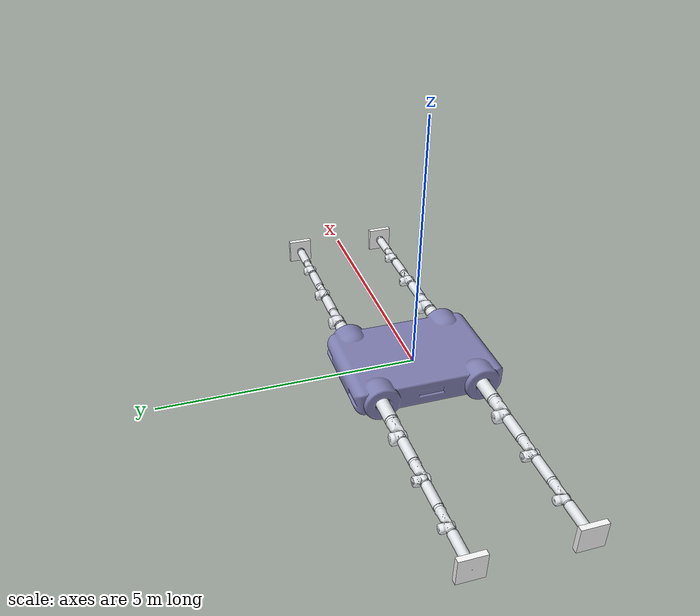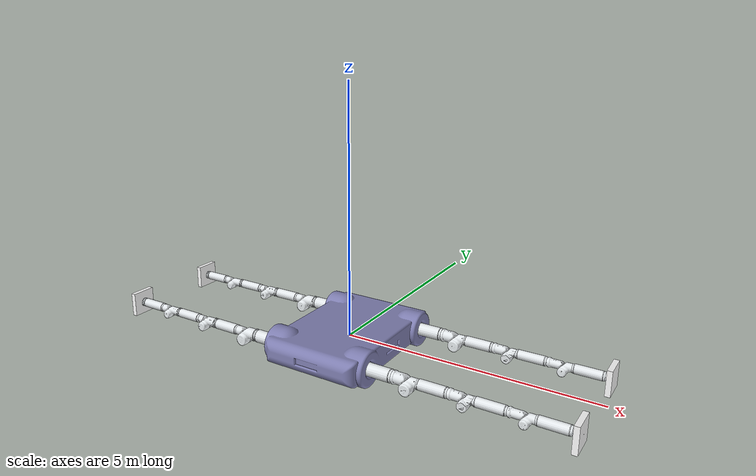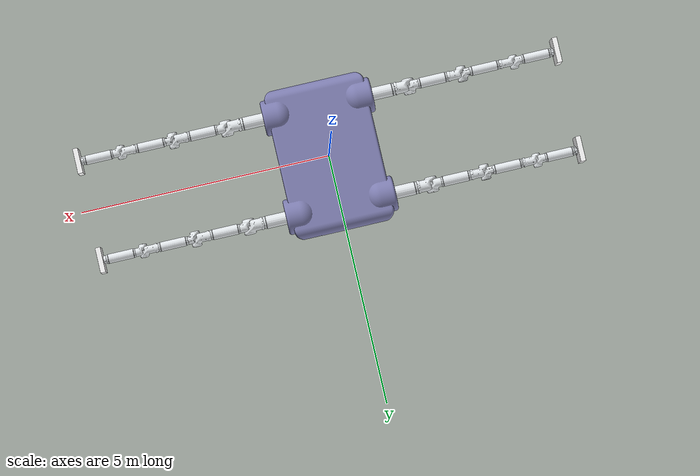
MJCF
<mujoco model="crab_robot">
  <compiler angle="radian" />

  <option iterations="1" ls_iterations="5" timestep="0.004" integrator="Euler" gravity="0 0 0">
    <flag eulerdamp="enable" />
  </option>

  <default>
    <default class="crab">
      <!-- globally disable all collisions -->
      <geom condim="1" contype="0" conaffinity="0" type="capsule" />
      <joint pos="0 0 0" axis="0 0 1" />
      <default class="roll">
        <joint range="-3.14 3.14" />
        <position kp="50" dampratio="1" ctrlrange="-3.14 3.14" />
      </default>
      <default class="pitch">
        <joint range="-3.14 0" />
        <position kp="400" dampratio="1" ctrlrange="-3.14 0" />
      </default>
      <default class="wrist">
        <joint range="-3.14 3.14" />
        <position kp="5" dampratio="1" ctrlrange="-3.14 3.14" />
      </default>
      <default class="visual">
        <geom type="mesh" contype="0" conaffinity="0" group="2" rgba="0.898039 0.917647 0.929412 1" />
        <default class="cluster_0">
          <geom type="capsule" size="0.127 0.25" rgba="0.898039 0.917647 0.929412 1" />
        </default>
        <default class="cluster_1_end">
          <geom pos="-0.134924 0.224015 0"
            quat="0.706998 -0.706998 -0.0123774 0.0123774" mesh="cluster_1_end_link" />
        </default>
        <default class="cluster_2_end">
          <geom pos="-0.1016 0.2032 0" quat="0.707105 -0.707108 0 0" type="mesh"
            rgba="0.89804 0.91765 0.92941 1" mesh="cluster_2_end_link" />
        </default>
      </default>
      <!-- enable collisions between specific bodies -->
      <default class="base">
        <!-- contype = 00001 -->
        <geom contype="1" />
      </default>
      <default class="cluster_1">
        <geom type="capsule" size="0.1016 0.25" pos="-0.143675 0.473861 0"
          quat="0.706998 -0.706998 -0.0123774 0.0123774"
          rgba="0.898039 0.917647 0.929412 1" />
        <default class="FR_cluster_1">
          <!-- contype = 00010 -->
          <geom contype="2" />
        </default>
        <default class="RR_cluster_1">
          <!-- contype = 00100 -->
          <geom contype="4" />
        </default>
        <default class="FL_cluster_1">
          <!-- contype = 01000 -->
          <geom contype="8" />
        </default>
        <default class="RL_cluster_1">
          <!-- contype = 10000 -->
          <geom contype="16" />
        </default>
      </default>
      <default class="cluster_2">
        <geom type="capsule" size="0.092075 0.25" pos="-0.1016 0.4532 -9.18301e-07"
          quat="0.707105 -0.707108 0 0" rgba="0.898039 0.917647 0.929412 1" />
        <default class="FR_cluster_2">
          <!-- conaffinity = 00100 -->
          <geom conaffinity="4" />
        </default>
        <default class="RR_cluster_2">
          <!-- conaffinity = 00010 -->
          <geom conaffinity="2" />
        </default>
        <default class="FL_cluster_2">
          <!-- conaffinity = 10000 -->
          <geom conaffinity="16" />
        </default>
        <default class="RL_cluster_2">
          <!-- conaffinity = 01000 -->
          <geom conaffinity="8" />
        </default>
      </default>
      <default class="cluster_3">
        <geom type="capsule" size="0.092075 0.25" pos="-0.0889 0.4532 -9.18301e-07"
          quat="0.707105 -0.707108 0 0" rgba="0.89804 0.91765 0.92941 1" />
        <default class="FR_cluster_3">
          <!-- conaffinity = 00101 -->
          <geom conaffinity="5" />
        </default>
        <default class="RR_cluster_3">
          <!-- conaffinity = 00011 -->
          <geom conaffinity="3" />
        </default>
        <default class="FL_cluster_3">
          <!-- conaffinity = 10001 -->
          <geom conaffinity="17" />
        </default>
        <default class="RL_cluster_3">
          <!-- conaffinity = 01001 -->
          <geom conaffinity="9" />
        </default>
        <default class="hand">
          <geom type="box" size="0.25 0.25 0.05" pos="0 0 0.15" quat="1 0 0 0" rgba="1 1 1 1" />
          <site pos="0 0 0.2" />
        </default>
      </default>
    </default>
  </default>

  <asset>
    <mesh name="base_link"
      file="/home/emily/rpc/robot_model/crab/meshes/base_link.stl" />
    <mesh name="base_link_simple"
      file="/home/emily/rpc/robot_model/crab/meshes/base_link.stl" />
    <mesh name="cluster_1_proximal_link"
      file="/home/emily/rpc/robot_model/crab/meshes/cluster_776_proximal_link.stl" />
    <mesh name="cluster_1_distal_link"
      file="/home/emily/rpc/robot_model/crab/meshes/cluster_776_distal_link.stl" />
    <mesh name="cluster_1_end_link"
      file="/home/emily/rpc/robot_model/crab/meshes/cluster_776_end_link.stl" />
    <mesh name="cluster_2_proximal_link"
      file="/home/emily/rpc/robot_model/crab/meshes/cluster_665_proximal_link.stl" />
    <mesh name="cluster_2_distal_link"
      file="/home/emily/rpc/robot_model/crab/meshes/cluster_665_distal_link.stl" />
    <mesh name="cluster_2_end_link"
      file="/home/emily/rpc/robot_model/crab/meshes/cluster_665_end_link.stl" />
    <mesh name="cluster_3_proximal_link"
      file="/home/emily/rpc/robot_model/crab/meshes/cluster_5555_proximal_link.stl" />
    <mesh name="cluster_3_distal_link"
      file="/home/emily/rpc/robot_model/crab/meshes/cluster_5555_distal_link.stl" />
    <mesh name="wrist_link"
      file="/home/emily/rpc/robot_model/crab/meshes/cluster_5555_wrist_link.stl" />
  </asset>

  <worldbody>
    <light name="spotlight" mode="targetbodycom" target="base" pos="3 0 4" />
    <body name="base" childclass="crab">
      <camera name="track" pos="9.685 7.841 5.994" xyaxes="-0.629 0.777 -0.000 -0.337 -0.273 0.901"
        mode="trackcom" />
      <camera name="top" pos="-1 0 1" xyaxes="0 -1 0 0.7 0 0.7" mode="trackcom" />
      <camera name="side" pos="0 -1 .3" xyaxes="1 0 0 0 1 2" mode="trackcom" />
      <camera name="back" pos="-1 0 .3" xyaxes="0 -1 0 1 0 2" mode="trackcom" />
      <inertial pos="1.59866e-08 0.012585 1.27306e-11" quat="0.500006 0.499965 -0.500035 0.499994"
        mass="119" diaginertia="149.258 96.1632 57.7298" />
      <geom class="visual" type="mesh" rgba="0.5 0.5 0.7 1" mesh="base_link" />
      <geom class="cluster_0" pos="1.25 1 0.000199082" quat="0.707388 0 0.706825 0" />
      <geom class="cluster_0" pos="-1.25 0.999602 -0.000199081"
        quat="0.000563312 0.707388 0.000562864 -0.706825" />
      <geom class="cluster_0" pos="1.25 -1 0.000199082" quat="0.707388 0 0.706825 0" />
      <geom class="cluster_0" pos="-1.25 -1.0004 -0.000199081"
        quat="0.000563312 0.707388 0.000562864 -0.706825" />
      <geom class="base" type="mesh" mesh="base_link_simple" group="3" />
      <freejoint />
      <site name="imu" pos="0 0 0" />
      <body name="FR_cluster_1_proximal" pos="1.5 1 0.000398163" quat="0.707388 0 0.706825 0">
        <inertial pos="0.046798 0.012731 0.19914" quat="0.671746 0.213265 0.316607 0.634851"
          mass="16.527" diaginertia="0.185581 0.152797 0.102802" />
        <joint name="FR_cluster_1_roll" class="roll" />
        <geom class="visual" mesh="cluster_1_proximal_link" />
        <body name="FR_cluster_1_distal" pos="0.127 0 0.34925"
          quat="0.706998 0.706998 0.0123774 -0.0123774">
          <inertial pos="-0.0992135 0.206673 0.0272132" quat="0.453823 0.503379 -0.445561 0.584919"
            mass="8.67091" diaginertia="0.494318 0.46179 0.061677" />
          <joint name="FR_cluster_1_pitch" class="pitch" />
          <geom class="visual" mesh="cluster_1_distal_link" />
          <geom class="cluster_1_end" />
          <geom class="FR_cluster_1" />
          <body name="FR_cluster_2_proximal" pos="-0.152425 0.723708 0"
            quat="0.706998 -0.706998 -0.0123774 0.0123774">
            <inertial pos="0.034064 0.015225 0.20259" quat="0.686346 0.127566 0.222924 0.680413"
              mass="10.138" diaginertia="0.0981416 0.0789755 0.0478309" />
            <joint name="FR_cluster_2_roll" class="roll" />
            <geom class="visual" mesh="cluster_2_proximal_link" />
            <body name="FR_cluster_2_distal" pos="0.1016 0 0.34925" quat="0.707105 0.707108 0 0">
              <inertial pos="-0.0771514 0.219461 0.0233658"
                quat="0.462552 0.47813 -0.473885 0.576949" mass="7.58403"
                diaginertia="0.392075 0.375777 0.0396222" />
              <joint name="FR_cluster_2_pitch" class="pitch" />
              <geom class="visual" mesh="cluster_2_distal_link" />
              <geom class="cluster_2_end" />
              <geom class="FR_cluster_2" />
              <body name="FR_cluster_3_proximal" pos="-0.1016 0.7032 -1.8366e-06"
                quat="0.707105 -0.707108 0 0">
                <inertial pos="0.026668 0.014315 0.20188"
                  quat="0.696543 0.0795451 0.170776 0.692341" mass="9.0522"
                  diaginertia="0.0754392 0.0616876 0.0333272" />
                <joint name="FR_cluster_3_roll" class="roll" />
                <geom class="visual" mesh="cluster_3_proximal_link" />
                <body name="FR_cluster_3_distal" pos="0.0889 0 0.34925"
                  quat="0.707105 0.707108 0 0">
                  <inertial pos="-0.0727041 0.237528 0.0166008"
                    quat="0.473139 0.481424 -0.484023 0.556859" mass="6.9917"
                    diaginertia="0.341329 0.32973 0.032835" />
                  <joint name="FR_cluster_3_pitch" class="pitch" />
                  <geom class="visual" mesh="cluster_3_distal_link" />
                  <geom class="FR_cluster_3" />
                  <body name="FR_wrist" pos="-0.0889 0.7032 -1.8366e-06"
                    quat="0.707105 -0.707108 0 0">
                    <inertial pos="9.9701e-06 -0.00027566 0.041402"
                      quat="0.0555933 0.704944 -0.0553839 0.704908" mass="2.5013"
                      diaginertia="0.010225 0.00552746 0.00547194" />
                    <joint name="FR_wrist" class="wrist" />
                    <geom class="visual" mesh="wrist_link" />
                    <geom class="hand" />
                    <site name="FR" class="hand" />
                  </body>
                </body>
              </body>
            </body>
          </body>
        </body>
      </body>
      <body name="FL_cluster_1_proximal" pos="-1.5 0.999204 -0.000398163"
        quat="0.000563312 0.707388 0.000562864 -0.706825">
        <inertial pos="0.046798 0.012731 0.19914" quat="0.671746 0.213265 0.316607 0.634851"
          mass="16.527" diaginertia="0.185581 0.152797 0.102802" />
        <joint name="FL_cluster_1_roll" class="roll" />
        <geom class="visual" mesh="cluster_1_proximal_link" />
        <body name="FL_cluster_1_distal" pos="0.127 0 0.34925"
          quat="0.706998 0.706998 0.0123774 -0.0123774">
          <inertial pos="-0.0992135 0.206673 0.0272132" quat="0.453823 0.503379 -0.445561 0.584919"
            mass="8.67091" diaginertia="0.494318 0.46179 0.061677" />
          <joint name="FL_cluster_1_pitch" class="pitch" />
          <geom class="visual" mesh="cluster_1_distal_link" />
          <geom class="cluster_1_end" />
          <geom class="FL_cluster_1" />
          <body name="FL_cluster_2_proximal" pos="-0.152425 0.723708 0"
            quat="0.706998 -0.706998 -0.0123774 0.0123774">
            <inertial pos="0.034064 0.015225 0.20259" quat="0.686346 0.127566 0.222924 0.680413"
              mass="10.138" diaginertia="0.0981416 0.0789755 0.0478309" />
            <joint name="FL_cluster_2_roll" class="roll" />
            <geom class="visual" mesh="cluster_2_proximal_link" />
            <body name="FL_cluster_2_distal" pos="0.1016 0 0.34925"
              quat="0.707105 0.707108 0 0">
              <inertial pos="-0.0771514 0.219461 0.0233658"
                quat="0.462552 0.47813 -0.473885 0.576949" mass="7.58403"
                diaginertia="0.392075 0.375777 0.0396222" />
              <joint name="FL_cluster_2_pitch" class="pitch" />
              <geom class="visual" mesh="cluster_2_distal_link" />
              <geom class="cluster_2_end" />
              <geom class="FL_cluster_2" />
              <body name="FL_cluster_3_proximal" pos="-0.1016 0.7032 -1.8366e-06"
                quat="0.707105 -0.707108 0 0">
                <inertial pos="0.026668 0.014315 0.20188"
                  quat="0.696543 0.0795451 0.170776 0.692341" mass="9.0522"
                  diaginertia="0.0754392 0.0616876 0.0333272" />
                <joint name="FL_cluster_3_roll" class="roll" />
                <geom class="visual" mesh="cluster_3_proximal_link" />
                <body name="FL_cluster_3_distal" pos="0.0889 0 0.34925"
                  quat="0.707105 0.707108 0 0">
                  <inertial pos="-0.0727041 0.237528 0.0166008"
                    quat="0.473139 0.481424 -0.484023 0.556859" mass="6.9917"
                    diaginertia="0.341329 0.32973 0.032835" />
                  <joint name="FL_cluster_3_pitch" class="pitch" />
                  <geom class="visual" mesh="cluster_3_distal_link" />
                  <geom class="FL_cluster_3" />
                  <body name="FL_wrist" pos="-0.0889 0.7032 -1.8366e-06"
                    quat="0.707105 -0.707108 0 0">
                    <inertial pos="9.9701e-06 -0.00027566 0.041402"
                      quat="0.0555933 0.704944 -0.0553839 0.704908" mass="2.5013"
                      diaginertia="0.010225 0.00552746 0.00547194" />
                    <joint name="FL_wrist" class="wrist" />
                    <geom class="visual" mesh="wrist_link" />
                    <geom class="hand" />
                    <site name="FL" class="hand" />
                  </body>
                </body>
              </body>
            </body>
          </body>
        </body>
      </body>
      <body name="RR_cluster_1_proximal" pos="1.5 -1 0.000398163"
        quat="0.707388 0 0.706825 0">
        <inertial pos="0.046798 0.012731 0.19914" quat="0.671746 0.213265 0.316607 0.634851"
          mass="16.527" diaginertia="0.185581 0.152797 0.102802" />
        <joint name="RR_cluster_1_roll" class="roll" />
        <geom class="visual" mesh="cluster_1_proximal_link" />
        <body name="RR_cluster_1_distal" pos="0.127 0 0.34925"
          quat="0.706998 0.706998 0.0123774 -0.0123774">
          <inertial pos="-0.0992135 0.206673 0.0272132" quat="0.453823 0.503379 -0.445561 0.584919"
            mass="8.67091" diaginertia="0.494318 0.46179 0.061677" />
          <joint name="RR_cluster_1_pitch" class="pitch" />
          <geom class="visual" mesh="cluster_1_distal_link" />
          <geom class="cluster_1_end" />
          <geom class="RR_cluster_1" />
          <body name="RR_cluster_2_proximal" pos="-0.152425 0.723708 0"
            quat="0.706998 -0.706998 -0.0123774 0.0123774">
            <inertial pos="0.034064 0.015225 0.20259" quat="0.686346 0.127566 0.222924 0.680413"
              mass="10.138" diaginertia="0.0981416 0.0789755 0.0478309" />
            <joint name="RR_cluster_2_roll" class="roll" />
            <geom class="visual" mesh="cluster_2_proximal_link" />
            <body name="RR_cluster_2_distal" pos="0.1016 0 0.34925"
              quat="0.707105 0.707108 0 0">
              <inertial pos="-0.0771514 0.219461 0.0233658"
                quat="0.462552 0.47813 -0.473885 0.576949" mass="7.58403"
                diaginertia="0.392075 0.375777 0.0396222" />
              <joint name="RR_cluster_2_pitch" class="pitch" />
              <geom class="visual" mesh="cluster_2_distal_link" />
              <geom class="cluster_2_end" />
              <geom class="RR_cluster_2" />
              <body name="RR_cluster_3_proximal" pos="-0.1016 0.7032 -1.8366e-06"
                quat="0.707105 -0.707108 0 0">
                <inertial pos="0.026668 0.014315 0.20188"
                  quat="0.696543 0.0795451 0.170776 0.692341" mass="9.0522"
                  diaginertia="0.0754392 0.0616876 0.0333272" />
                <joint name="RR_cluster_3_roll" class="roll" />
                <geom class="visual" mesh="cluster_3_proximal_link" />
                <body name="RR_cluster_3_distal" pos="0.0889 0 0.34925"
                  quat="0.707105 0.707108 0 0">
                  <inertial pos="-0.0727041 0.237528 0.0166008"
                    quat="0.473139 0.481424 -0.484023 0.556859" mass="6.9917"
                    diaginertia="0.341329 0.32973 0.032835" />
                  <joint name="RR_cluster_3_pitch" class="pitch" />
                  <geom class="visual" mesh="cluster_3_distal_link" />
                  <geom class="RR_cluster_3" />
                  <body name="RR_wrist" pos="-0.0889 0.7032 -1.8366e-06"
                    quat="0.707105 -0.707108 0 0">
                    <inertial pos="9.9701e-06 -0.00027566 0.041402"
                      quat="0.0555933 0.704944 -0.0553839 0.704908" mass="2.5013"
                      diaginertia="0.010225 0.00552746 0.00547194" />
                    <joint name="RR_wrist" class="wrist" />
                    <geom class="visual" mesh="wrist_link" />
                    <geom class="hand" />
                    <site name="RR" class="hand" />
                  </body>
                </body>
              </body>
            </body>
          </body>
        </body>
      </body>
      <body name="RL_cluster_1_proximal" pos="-1.5 -1.0008 -0.000398163"
        quat="0.000563312 0.707388 0.000562864 -0.706825">
        <inertial pos="0.046798 0.012731 0.19914" quat="0.671746 0.213265 0.316607 0.634851"
          mass="16.527" diaginertia="0.185581 0.152797 0.102802" />
        <joint name="RL_cluster_1_roll" class="roll" />
        <geom class="visual" mesh="cluster_1_proximal_link" />
        <body name="RL_cluster_1_distal" pos="0.127 0 0.34925"
          quat="0.706998 0.706998 0.0123774 -0.0123774">
          <inertial pos="-0.0992135 0.206673 0.0272132" quat="0.453823 0.503379 -0.445561 0.584919"
            mass="8.67091" diaginertia="0.494318 0.46179 0.061677" />
          <joint name="RL_cluster_1_pitch" class="pitch" />
          <geom class="visual" mesh="cluster_1_distal_link" />
          <geom class="cluster_1_end" />
          <geom class="RL_cluster_1" />
          <body name="RL_cluster_2_proximal" pos="-0.152425 0.723708 0"
            quat="0.706998 -0.706998 -0.0123774 0.0123774">
            <inertial pos="0.034064 0.015225 0.20259" quat="0.686346 0.127566 0.222924 0.680413"
              mass="10.138" diaginertia="0.0981416 0.0789755 0.0478309" />
            <joint name="RL_cluster_2_roll" class="roll" />
            <geom class="visual" mesh="cluster_2_proximal_link" />
            <body name="RL_cluster_2_distal" pos="0.1016 0 0.34925"
              quat="0.707105 0.707108 0 0">
              <inertial pos="-0.0771514 0.219461 0.0233658"
                quat="0.462552 0.47813 -0.473885 0.576949" mass="7.58403"
                diaginertia="0.392075 0.375777 0.0396222" />
              <joint name="RL_cluster_2_pitch" class="pitch" />
              <geom class="visual" mesh="cluster_2_distal_link" />
              <geom class="cluster_2_end" />
              <geom class="RL_cluster_2" />
              <body name="RL_cluster_3_proximal" pos="-0.1016 0.7032 -1.8366e-06"
                quat="0.707105 -0.707108 0 0">
                <inertial pos="0.026668 0.014315 0.20188"
                  quat="0.696543 0.0795451 0.170776 0.692341" mass="9.0522"
                  diaginertia="0.0754392 0.0616876 0.0333272" />
                <joint name="RL_cluster_3_roll" class="roll" />
                <geom class="visual" mesh="cluster_3_proximal_link" />
                <body name="RL_cluster_3_distal" pos="0.0889 0 0.34925"
                  quat="0.707105 0.707108 0 0">
                  <inertial pos="-0.0727041 0.237528 0.0166008"
                    quat="0.473139 0.481424 -0.484023 0.556859" mass="6.9917"
                    diaginertia="0.341329 0.32973 0.032835" />
                  <joint name="RL_cluster_3_pitch" class="pitch" />
                  <geom class="visual" mesh="cluster_3_distal_link" />
                  <geom class="RL_cluster_3" />
                  <body name="RL_wrist" pos="-0.0889 0.7032 -1.8366e-06"
                    quat="0.707105 -0.707108 0 0">
                    <inertial pos="9.9701e-06 -0.00027566 0.041402"
                      quat="0.0555933 0.704944 -0.0553839 0.704908" mass="2.5013"
                      diaginertia="0.010225 0.00552746 0.00547194" />
                    <joint name="RL_wrist" />
                    <geom class="visual" mesh="wrist_link" />
                    <geom class="hand" />
                    <site name="RL" />
                  </body>
                </body>
              </body>
            </body>
          </body>
        </body>
      </body>
    </body>
  </worldbody>

  <actuator>
    <position name="FR_cluster_1_roll" joint="FR_cluster_1_roll" class="roll" />
    <position name="FR_cluster_1_pitch" joint="FR_cluster_1_pitch" class="pitch" />
    <position name="FR_cluster_2_roll" joint="FR_cluster_2_roll" class="roll" />
    <position name="FR_cluster_2_pitch" joint="FR_cluster_2_pitch" class="pitch" />
    <position name="FR_cluster_3_roll" joint="FR_cluster_3_roll" class="roll" />
    <position name="FR_cluster_3_pitch" joint="FR_cluster_3_pitch" class="pitch" />
    <position name="FR_wrist" joint="FR_wrist" class="wrist" />
    <position name="FL_cluster_1_roll" joint="FL_cluster_1_roll" class="roll" />
    <position name="FL_cluster_1_pitch" joint="FL_cluster_1_pitch" class="pitch" />
    <position name="FL_cluster_2_roll" joint="FL_cluster_2_roll" class="roll" />
    <position name="FL_cluster_2_pitch" joint="FL_cluster_2_pitch" class="pitch" />
    <position name="FL_cluster_3_roll" joint="FL_cluster_3_roll" class="roll" />
    <position name="FL_cluster_3_pitch" joint="FL_cluster_3_pitch" class="pitch" />
    <position name="FL_wrist" joint="FL_wrist" class="wrist" />
    <position name="RR_cluster_1_roll" joint="RR_cluster_1_roll" class="roll" />
    <position name="RR_cluster_1_pitch" joint="RR_cluster_1_pitch" class="pitch" />
    <position name="RR_cluster_2_roll" joint="RR_cluster_2_roll" class="roll" />
    <position name="RR_cluster_2_pitch" joint="RR_cluster_2_pitch" class="pitch" />
    <position name="RR_cluster_3_roll" joint="RR_cluster_3_roll" class="roll" />
    <position name="RR_cluster_3_pitch" joint="RR_cluster_3_pitch" class="pitch" />
    <position name="RR_wrist" joint="RR_wrist" class="wrist" />
    <position name="RL_cluster_1_roll" joint="RL_cluster_1_roll" class="roll" />
    <position name="RL_cluster_1_pitch" joint="RL_cluster_1_pitch" class="pitch" />
    <position name="RL_cluster_2_roll" joint="RL_cluster_2_roll" class="roll" />
    <position name="RL_cluster_2_pitch" joint="RL_cluster_2_pitch" class="pitch" />
    <position name="RL_cluster_3_roll" joint="RL_cluster_3_roll" class="roll" />
    <position name="RL_cluster_3_pitch" joint="RL_cluster_3_pitch" class="pitch" />
    <position name="RL_wrist" joint="RL_wrist" class="wrist" />
  </actuator>

  <sensor>
    <gyro site="imu" name="gyro" />
    <velocimeter site="imu" name="local_linvel" />
    <accelerometer site="imu" name="accelerometer" />
    <framepos objtype="site" objname="imu" name="position" />
    <framelinvel objtype="site" objname="imu" name="global_linvel" />
    <frameangvel objtype="site" objname="imu" name="global_angvel" />
    <framequat objtype="site" objname="imu" name="orientation" />
  </sensor>

  <keyframe>
    <key name="home"
      qpos="0 0 0 1 0 0 0 0 -0.52 0 -0.52 0 -0.52 0 0 -0.52 0 -0.52 0 -0.52 0 0 -0.52 0 -0.52 0 -0.52 0 0 -0.52 0 -0.52 0 -0.52 0"
      ctrl="0 -0.52 0 -0.52 0 -0.52 0 0 -0.52 0 -0.52 0 -0.52 0 0 -0.52 0 -0.52 0 -0.52 0 0 -0.52 0 -0.52 0 -0.52 0" />
  </keyframe>
</mujoco>
